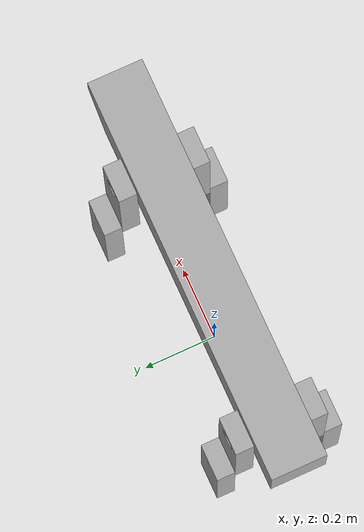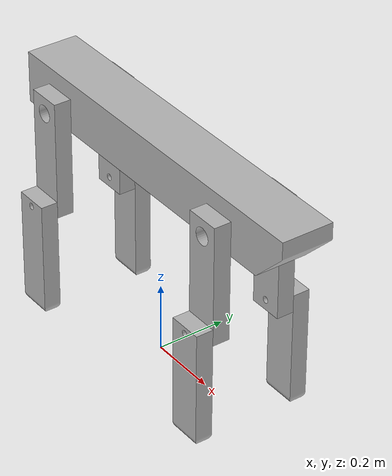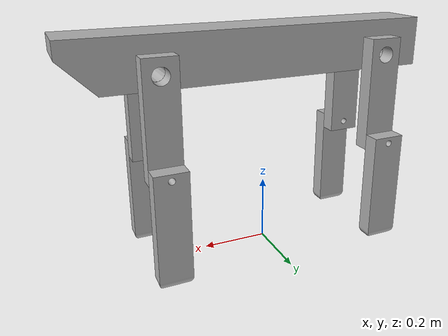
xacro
<?xml version="1.0" ?>
<robot name="Spot_Robot" xmlns:xacro="http://www.ros.org/wiki/xacro">

<xacro:include filename="$(find Spot_Robot_description)/urdf/materials.xacro" />
<xacro:include filename="$(find Spot_Robot_description)/urdf/Spot_Robot.trans" />
<xacro:include filename="$(find Spot_Robot_description)/urdf/Spot_Robot.gazebo" />
<link name="base_link">
  <inertial>
    <origin xyz="0.034705979560597976 1.2431716245741647e-17 0.6269638764277176" rpy="0 0 0"/>
    <mass value="24.815608460099053"/>
    <inertia ixx="0.093315" iyy="2.395534" izz="2.395278" ixy="0.0" iyz="0.0" ixz="-0.016859"/>
  </inertial>
  <visual>
    <origin xyz="0 0 0" rpy="0 0 0"/>
    <geometry>
      <mesh filename="package://Spot_Robot_description/meshes/base_link.stl" scale="0.001 0.001 0.001"/>
    </geometry>
    <material name="silver"/>
  </visual>
  <collision>
    <origin xyz="0 0 0" rpy="0 0 0"/>
    <geometry>
      <mesh filename="package://Spot_Robot_description/meshes/base_link.stl" scale="0.001 0.001 0.001"/>
    </geometry>
  </collision>
</link>

<link name="thigh1_1">
  <inertial>
    <origin xyz="0.0 -0.02500000000000001 -0.13110848124128316" rpy="0 0 0"/>
    <mass value="1.7342843022858172"/>
    <inertia ixx="0.01724" iyy="0.018408" izz="0.00189" ixy="0.0" iyz="-0.0" ixz="0.0"/>
  </inertial>
  <visual>
    <origin xyz="0.35 0.075 -0.6" rpy="0 0 0"/>
    <geometry>
      <mesh filename="package://Spot_Robot_description/meshes/thigh1_1.stl" scale="0.001 0.001 0.001"/>
    </geometry>
    <material name="silver"/>
  </visual>
  <collision>
    <origin xyz="0.35 0.075 -0.6" rpy="0 0 0"/>
    <geometry>
      <mesh filename="package://Spot_Robot_description/meshes/thigh1_1.stl" scale="0.001 0.001 0.001"/>
    </geometry>
  </collision>
</link>

<link name="thigh2_1">
  <inertial>
    <origin xyz="0.0 -0.02500000000000001 -0.1311084812412429" rpy="0 0 0"/>
    <mass value="1.7342843022858172"/>
    <inertia ixx="0.01724" iyy="0.018408" izz="0.00189" ixy="0.0" iyz="-0.0" ixz="0.0"/>
  </inertial>
  <visual>
    <origin xyz="-0.35 0.075 -0.6" rpy="0 0 0"/>
    <geometry>
      <mesh filename="package://Spot_Robot_description/meshes/thigh2_1.stl" scale="0.001 0.001 0.001"/>
    </geometry>
    <material name="silver"/>
  </visual>
  <collision>
    <origin xyz="-0.35 0.075 -0.6" rpy="0 0 0"/>
    <geometry>
      <mesh filename="package://Spot_Robot_description/meshes/thigh2_1.stl" scale="0.001 0.001 0.001"/>
    </geometry>
  </collision>
</link>

<link name="thigh4_1">
  <inertial>
    <origin xyz="0.0 0.02500000000000001 -0.13110848124078311" rpy="0 0 0"/>
    <mass value="1.734284302285807"/>
    <inertia ixx="0.01724" iyy="0.018408" izz="0.00189" ixy="0.0" iyz="0.0" ixz="-0.0"/>
  </inertial>
  <visual>
    <origin xyz="0.35 -0.075 -0.6" rpy="0 0 0"/>
    <geometry>
      <mesh filename="package://Spot_Robot_description/meshes/thigh4_1.stl" scale="0.001 0.001 0.001"/>
    </geometry>
    <material name="silver"/>
  </visual>
  <collision>
    <origin xyz="0.35 -0.075 -0.6" rpy="0 0 0"/>
    <geometry>
      <mesh filename="package://Spot_Robot_description/meshes/thigh4_1.stl" scale="0.001 0.001 0.001"/>
    </geometry>
  </collision>
</link>

<link name="thigh3_1">
  <inertial>
    <origin xyz="0.0 0.02500000000000001 -0.13110848124080327" rpy="0 0 0"/>
    <mass value="1.734284302285807"/>
    <inertia ixx="0.01724" iyy="0.018408" izz="0.00189" ixy="0.0" iyz="0.0" ixz="-0.0"/>
  </inertial>
  <visual>
    <origin xyz="-0.35 -0.075 -0.6" rpy="0 0 0"/>
    <geometry>
      <mesh filename="package://Spot_Robot_description/meshes/thigh3_1.stl" scale="0.001 0.001 0.001"/>
    </geometry>
    <material name="silver"/>
  </visual>
  <collision>
    <origin xyz="-0.35 -0.075 -0.6" rpy="0 0 0"/>
    <geometry>
      <mesh filename="package://Spot_Robot_description/meshes/thigh3_1.stl" scale="0.001 0.001 0.001"/>
    </geometry>
  </collision>
</link>

<link name="leg1_1">
  <inertial>
    <origin xyz="0.0 -0.025000000000000022 -0.153027583133943" rpy="0 0 0"/>
    <mass value="1.8020488539277224"/>
    <inertia ixx="0.017862" iyy="0.018996" izz="0.001876" ixy="0.0" iyz="-0.0" ixz="0.0"/>
  </inertial>
  <visual>
    <origin xyz="0.35 0.125 -0.33" rpy="0 0 0"/>
    <geometry>
      <mesh filename="package://Spot_Robot_description/meshes/leg1_1.stl" scale="0.001 0.001 0.001"/>
    </geometry>
    <material name="silver"/>
  </visual>
  <collision>
    <origin xyz="0.35 0.125 -0.33" rpy="0 0 0"/>
    <geometry>
      <mesh filename="package://Spot_Robot_description/meshes/leg1_1.stl" scale="0.001 0.001 0.001"/>
    </geometry>
  </collision>
</link>

<link name="leg2_1">
  <inertial>
    <origin xyz="0.0 -0.025000000000000022 -0.15302758313390435" rpy="0 0 0"/>
    <mass value="1.8020488539277224"/>
    <inertia ixx="0.017862" iyy="0.018996" izz="0.001876" ixy="0.0" iyz="-0.0" ixz="-0.0"/>
  </inertial>
  <visual>
    <origin xyz="-0.35 0.125 -0.33" rpy="0 0 0"/>
    <geometry>
      <mesh filename="package://Spot_Robot_description/meshes/leg2_1.stl" scale="0.001 0.001 0.001"/>
    </geometry>
    <material name="silver"/>
  </visual>
  <collision>
    <origin xyz="-0.35 0.125 -0.33" rpy="0 0 0"/>
    <geometry>
      <mesh filename="package://Spot_Robot_description/meshes/leg2_1.stl" scale="0.001 0.001 0.001"/>
    </geometry>
  </collision>
</link>

<link name="leg3_1">
  <inertial>
    <origin xyz="1.1102230246251565e-16 0.025000000000000022 -0.1530275831339141" rpy="0 0 0"/>
    <mass value="1.8020488539277209"/>
    <inertia ixx="0.017862" iyy="0.018996" izz="0.001876" ixy="0.0" iyz="0.0" ixz="0.0"/>
  </inertial>
  <visual>
    <origin xyz="-0.35 -0.125 -0.33" rpy="0 0 0"/>
    <geometry>
      <mesh filename="package://Spot_Robot_description/meshes/leg3_1.stl" scale="0.001 0.001 0.001"/>
    </geometry>
    <material name="silver"/>
  </visual>
  <collision>
    <origin xyz="-0.35 -0.125 -0.33" rpy="0 0 0"/>
    <geometry>
      <mesh filename="package://Spot_Robot_description/meshes/leg3_1.stl" scale="0.001 0.001 0.001"/>
    </geometry>
  </collision>
</link>

<link name="leg4_1">
  <inertial>
    <origin xyz="5.551115123125783e-17 0.025000000000000022 -0.15302758313391412" rpy="0 0 0"/>
    <mass value="1.8020488539277209"/>
    <inertia ixx="0.017862" iyy="0.018996" izz="0.001876" ixy="0.0" iyz="0.0" ixz="0.0"/>
  </inertial>
  <visual>
    <origin xyz="0.35 -0.125 -0.33" rpy="0 0 0"/>
    <geometry>
      <mesh filename="package://Spot_Robot_description/meshes/leg4_1.stl" scale="0.001 0.001 0.001"/>
    </geometry>
    <material name="silver"/>
  </visual>
  <collision>
    <origin xyz="0.35 -0.125 -0.33" rpy="0 0 0"/>
    <geometry>
      <mesh filename="package://Spot_Robot_description/meshes/leg4_1.stl" scale="0.001 0.001 0.001"/>
    </geometry>
  </collision>
</link>

<joint name="Revolute 9" type="continuous">
  <origin xyz="-0.35 -0.075 0.6" rpy="0 0 0"/>
  <parent link="base_link"/>
  <child link="thigh1_1"/>
  <axis xyz="0.0 1.0 0.0"/>
</joint>

<joint name="Revolute 10" type="continuous">
  <origin xyz="0.35 -0.075 0.6" rpy="0 0 0"/>
  <parent link="base_link"/>
  <child link="thigh2_1"/>
  <axis xyz="0.0 1.0 0.0"/>
</joint>

<joint name="Revolute 11" type="continuous">
  <origin xyz="-0.35 0.075 0.6" rpy="0 0 0"/>
  <parent link="base_link"/>
  <child link="thigh4_1"/>
  <axis xyz="0.0 -1.0 0.0"/>
</joint>

<joint name="Revolute 12" type="continuous">
  <origin xyz="0.35 0.075 0.6" rpy="0 0 0"/>
  <parent link="base_link"/>
  <child link="thigh3_1"/>
  <axis xyz="0.0 -1.0 0.0"/>
</joint>

<joint name="Revolute 13" type="continuous">
  <origin xyz="0.0 -0.05 -0.27" rpy="0 0 0"/>
  <parent link="thigh1_1"/>
  <child link="leg1_1"/>
  <axis xyz="0.0 1.0 0.0"/>
</joint>

<joint name="Revolute 14" type="continuous">
  <origin xyz="0.0 -0.05 -0.27" rpy="0 0 0"/>
  <parent link="thigh2_1"/>
  <child link="leg2_1"/>
  <axis xyz="0.0 1.0 0.0"/>
</joint>

<joint name="Revolute 15" type="continuous">
  <origin xyz="0.0 0.05 -0.27" rpy="0 0 0"/>
  <parent link="thigh3_1"/>
  <child link="leg3_1"/>
  <axis xyz="0.0 -1.0 0.0"/>
</joint>

<joint name="Revolute 16" type="continuous">
  <origin xyz="0.0 0.05 -0.27" rpy="0 0 0"/>
  <parent link="thigh4_1"/>
  <child link="leg4_1"/>
  <axis xyz="0.0 -1.0 0.0"/>
</joint>

</robot>

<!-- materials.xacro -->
<robot name="Spot_Robot" xmlns:xacro="http://www.ros.org/wiki/xacro" >

<material name="silver">
  <color rgba="0.700 0.700 0.700 1.000"/>
</material>

</robot>

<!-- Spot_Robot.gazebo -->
<robot name="Spot_Robot" xmlns:xacro="http://www.ros.org/wiki/xacro" >

<xacro:property name="body_color" value="Gazebo/Silver" />

<gazebo>
  <plugin name="control" filename="libgazebo_ros_control.so"/>
</gazebo>
<gazebo reference="base_link">
  <material>${body_color}</material>
  <mu1>0.2</mu1>
  <mu2>0.2</mu2>
  <selfCollide>true</selfCollide>
  <gravity>true</gravity>
</gazebo>

<gazebo reference="thigh1_1">
  <material>${body_color}</material>
  <mu1>0.2</mu1>
  <mu2>0.2</mu2>
  <selfCollide>true</selfCollide>
</gazebo>

<gazebo reference="thigh2_1">
  <material>${body_color}</material>
  <mu1>0.2</mu1>
  <mu2>0.2</mu2>
  <selfCollide>true</selfCollide>
</gazebo>

<gazebo reference="thigh4_1">
  <material>${body_color}</material>
  <mu1>0.2</mu1>
  <mu2>0.2</mu2>
  <selfCollide>true</selfCollide>
</gazebo>

<gazebo reference="thigh3_1">
  <material>${body_color}</material>
  <mu1>0.2</mu1>
  <mu2>0.2</mu2>
  <selfCollide>true</selfCollide>
</gazebo>

<gazebo reference="leg1_1">
  <material>${body_color}</material>
  <mu1>0.2</mu1>
  <mu2>0.2</mu2>
  <selfCollide>true</selfCollide>
</gazebo>

<gazebo reference="leg2_1">
  <material>${body_color}</material>
  <mu1>0.2</mu1>
  <mu2>0.2</mu2>
  <selfCollide>true</selfCollide>
</gazebo>

<gazebo reference="leg3_1">
  <material>${body_color}</material>
  <mu1>0.2</mu1>
  <mu2>0.2</mu2>
  <selfCollide>true</selfCollide>
</gazebo>

<gazebo reference="leg4_1">
  <material>${body_color}</material>
  <mu1>0.2</mu1>
  <mu2>0.2</mu2>
  <selfCollide>true</selfCollide>
</gazebo>

</robot>
